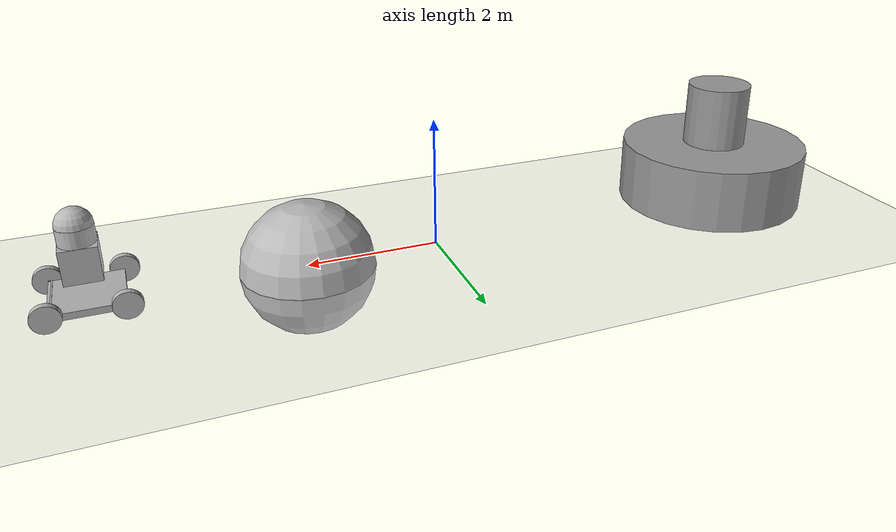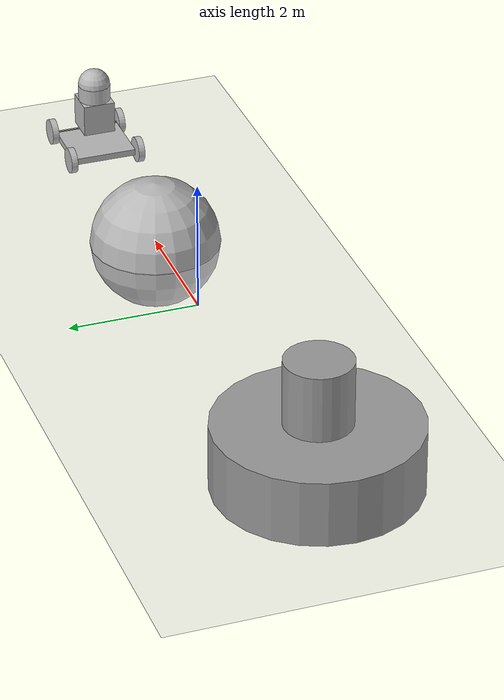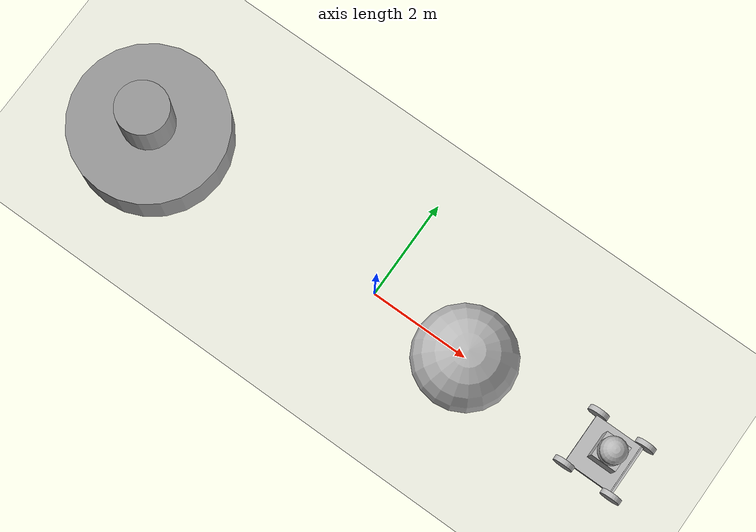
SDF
<sdf version="1.5">
 <world name="default">
  <wind><linear_velocity>0 1 0</linear_velocity></wind>
  <plugin name="wind" filename="libWindPlugin.so">
   <horizontal>
    <magnitude>
     <time_for_rise>10</time_for_rise>
     <sin><amplitude_percent>0.05</amplitude_percent><period>60</period></sin>
     <noise type="gaussian"><mean>0</mean><stddev>0.0002</stddev></noise>
    </magnitude>
    <direction>
     <time_for_rise>30</time_for_rise>
     <sin><amplitude>5</amplitude><period>20</period></sin>
     <noise type="gaussian"><mean>0</mean><stddev>0.03</stddev></noise>
    </direction>
   </horizontal>
   <vertical><noise type="gaussian"><mean>0</mean><stddev>0.03</stddev></noise></vertical>
  </plugin>
  <include><uri>model://ground_plane</uri></include>
  <include><uri>model://sun</uri></include>
  <model name="sphere">
   <pose>2 0 0 0 0 0</pose>
   <link name="body">
    <inertial>
     <inertia><ixx>1</ixx><ixy>0</ixy><ixz>0</ixz><iyy>1</iyy><iyz>0</iyz><izz>1</izz></inertia>
     <mass>1.0</mass>
    </inertial>
    <collision name="geom"><geometry><sphere><radius>1</radius></sphere></geometry></collision>
    <visual name="visual">
     <geometry><sphere><radius>1</radius></sphere></geometry>
     <material><script>Gazebo/WoodPallet</script></material>
    </visual>
   </link>
   <static>true</static>
  </model>
  <model name="camera_model">
   <link name="my_link">
    <inertial>
     <inertia><ixx>1</ixx><ixy>0</ixy><ixz>0</ixz><iyy>1</iyy><iyz>0</iyz><izz>1</izz></inertia>
     <mass>1.0</mass>
    </inertial>
    <collision name="collision"><geometry><box><size>1 1 1</size></box></geometry></collision>
    <sensor name="camera" type="depth">
     <camera>
      <horizontal_fov>1.04719755</horizontal_fov>
      <image><width>640</width><height>480</height></image>
      <clip><near>0.1</near><far>20</far></clip>
     </camera>
     <plugin filename="libDepthCameraPlugin.so" name="depth_camera_plugin"/>
     <always_on>true</always_on>
     <update_rate>10</update_rate>
    </sensor>
   </link>
   <static>true</static>
  </model>
  <model name="camera_model1">
   <pose>0 1 0 0 0 0</pose>
   <link name="my_link1">
    <inertial>
     <inertia><ixx>1</ixx><ixy>0</ixy><ixz>0</ixz><iyy>1</iyy><iyz>0</iyz><izz>1</izz></inertia>
     <mass>1.0</mass>
    </inertial>
    <collision name="collision"><geometry><box><size>1 1 1</size></box></geometry></collision>
    <sensor name="camera" type="wideanglecamera">
     <camera>
      <horizontal_fov>1.047</horizontal_fov>
      <image><width>320</width><height>240</height></image>
      <clip><near>0.1</near><far>100</far></clip>
      <lens>
       <type>gnomonical</type>
       <scale_to_hfov>true</scale_to_hfov>
       <cutoff_angle>1.5707</cutoff_angle>
       <env_texture_size>512</env_texture_size>
      </lens>
     </camera>
     <always_on>1</always_on>
     <update_rate>30</update_rate>
     <visualize>true</visualize>
     <plugin name="lensflare" filename="libLensFlareSensorPlugin.so"/>
    </sensor>
   </link>
   <static>true</static>
  </model>
  <model name="camera_model2">
   <pose>1 0 0 0 0 0</pose>
   <link name="my_link2">
    <inertial>
     <inertia><ixx>1</ixx><ixy>0</ixy><ixz>0</ixz><iyy>1</iyy><iyz>0</iyz><izz>1</izz></inertia>
     <mass>1.0</mass>
    </inertial>
    <collision name="collision"><geometry><box><size>1 1 1</size></box></geometry></collision>
    <sensor name="camera2" type="camera">
     <camera>
      <horizontal_fov>1.04719755</horizontal_fov>
      <image><width>640</width><height>480</height></image>
      <clip><near>0.1</near><far>20</far></clip>
     </camera>
     <plugin filename="libCameraPlugin.so" name="camera_plugin"/>
     <always_on>true</always_on>
     <update_rate>10</update_rate>
    </sensor>
   </link>
   <static>true</static>
  </model>
  <model name="actuator_example">
   <pose>-5 0 0 0 0 0</pose>
   <link name="top">
    <visual name="top_visual">
     <pose>0 0 1.5 0 -0 0</pose>
     <geometry><cylinder><radius>0.5</radius><length>1</length></cylinder></geometry>
     <material>
      <script><uri>file://media/materials/scripts/gazebo.material</uri><name>Gazebo/Grey</name></script>
     </material>
    </visual>
    <collision name="top_collision">
     <geometry><cylinder><radius>0.5</radius><length>1</length></cylinder></geometry>
     <pose>0 0 1.5 0 0 0</pose>
    </collision>
    <inertial>
     <mass>1</mass>
     <inertia><ixx>1</ixx><ixy>0</ixy><ixz>0</ixz><iyy>1</iyy><iyz>0</iyz><izz>1</izz></inertia>
    </inertial>
   </link>
   <link name="base">
    <visual name="base_visual">
     <pose>0 0 0.5 0 0 0</pose>
     <geometry><cylinder><radius>1.5</radius><length>1</length></cylinder></geometry>
     <material>
      <script><uri>file://media/materials/scripts/gazebo.material</uri><name>Gazebo/Grey</name></script>
     </material>
    </visual>
    <collision name="base_collision">
     <geometry><cylinder><radius>1.5</radius><length>1</length></cylinder></geometry>
     <pose>0 0 0.5 0 0 0</pose>
    </collision>
    <inertial>
     <mass>1</mass>
     <inertia><ixx>1</ixx><ixy>0</ixy><ixz>0</ixz><iyy>1</iyy><iyz>0</iyz><izz>1</izz></inertia>
    </inertial>
   </link>
   <joint name="JOINT_0" type="revolute">
    <parent>base</parent>
    <child>top</child>
    <axis>
     <xyz>0 0 1</xyz>
     <use_parent_model_frame>0</use_parent_model_frame>
     <limit><lower>1e-16</lower><upper>1e16</upper></limit>
    </axis>
    <pose>0 0 1 0 -0 0</pose>
   </joint>
   <static>0</static>
   <plugin name="actuator_plugin" filename="libActuatorPlugin.so">
    <actuator>
     <name>actuator_0</name>
     <joint>JOINT_0</joint>
     <index>0</index>
     <type>electric_motor</type>
     <power>20</power>
     <max_velocity>6</max_velocity>
     <max_torque>10.0</max_torque>
    </actuator>
   </plugin>
  </model>
  <model name="test_model">
   <pose>5 0 0.7 0 0 0</pose>
   <link name="link">
    <inertial>
     <inertia><ixx>1</ixx><ixy>0</ixy><ixz>0</ixz><iyy>1</iyy><iyz>0</iyz><izz>1</izz></inertia>
     <mass>1.0</mass>
    </inertial>
    <collision name="collision">
     <pose>0 0 -0.55 0 0 0</pose>
     <geometry><box><size>1 1 0.1</size></box></geometry>
     <surface>
      <friction><ode><mu>1</mu><mu2>1</mu2></ode></friction>
      <contact><ode><max_vel>100</max_vel></ode></contact>
     </surface>
    </collision>
    <visual name="visual">
     <pose>0 0 -0.55 0 0 0</pose>
     <geometry><box><size>1 1 0.1</size></box></geometry>
     <material><script>Gazebo/WoodPallet</script></material>
    </visual>
    <collision name="collision2">
     <geometry><box><size>0.5 0.5 0.5</size></box></geometry>
     <surface>
      <friction><ode><mu>1</mu><mu2>1</mu2></ode></friction>
      <contact><ode><max_vel>100</max_vel></ode></contact>
     </surface>
    </collision>
    <visual name="visual2">
     <geometry><box><size>0.5 0.5 0.5</size></box></geometry>
     <material><script>Gazebo/WoodPallet</script></material>
    </visual>
   </link>
   <link name="bar_1">
    <pose>0.45 0 -0.5 0 0 0</pose>
    <inertial>
     <inertia><ixx>0.001</ixx><ixy>0</ixy><ixz>0</ixz><iyy>0.001</iyy><iyz>0</iyz><izz>0.001</izz></inertia>
     <mass>0.1</mass>
    </inertial>
    <collision name="collision">
     <geometry><box><size>0.02 1.0 0.02</size></box></geometry>
     <surface>
      <friction><ode><mu>1</mu><mu2>1</mu2></ode></friction>
      <contact><ode><max_vel>100</max_vel></ode></contact>
     </surface>
    </collision>
    <visual name="visual">
     <geometry><box><size>0.02 1.0 0.02</size></box></geometry>
     <material><script>Gazebo/WoodPallet</script></material>
    </visual>
   </link>
   <joint name="bar_12_joint" type="revolute">
    <parent>bar_2</parent>
    <child>bar_1</child>
    <pose>0 0.5 0 0 0 0</pose>
    <axis><xyz>0 0 1</xyz><use_parent_model_frame>true</use_parent_model_frame></axis>
   </joint>
   <joint name="bar_13_joint" type="revolute">
    <parent>bar_3</parent>
    <child>bar_1</child>
    <pose>0 -0.5 0 0 0 0</pose>
    <axis><xyz>0 0 1</xyz><use_parent_model_frame>true</use_parent_model_frame></axis>
   </joint>
   <link name="bar_2">
    <pose>0.5 0.5 -0.5 0 0 0</pose>
    <inertial>
     <inertia><ixx>0.001</ixx><ixy>0</ixy><ixz>0</ixz><iyy>0.001</iyy><iyz>0</iyz><izz>0.001</izz></inertia>
     <mass>0.1</mass>
    </inertial>
    <collision name="collision">
     <pose>-0.025 0 0 0 0 0</pose>
     <geometry><box><size>0.05 0.02 0.02</size></box></geometry>
     <surface>
      <friction><ode><mu>1</mu><mu2>1</mu2></ode></friction>
      <contact><ode><max_vel>100</max_vel></ode></contact>
     </surface>
    </collision>
    <visual name="visual">
     <pose>-0.025 0 0 0 0 0</pose>
     <geometry><box><size>0.05 0.02 0.02</size></box></geometry>
     <material><script>Gazebo/WoodPallet</script></material>
    </visual>
   </link>
   <joint name="bar_2_joint" type="revolute">
    <parent>link</parent>
    <child>bar_2</child>
    <axis><xyz>0 0 1</xyz><use_parent_model_frame>true</use_parent_model_frame></axis>
   </joint>
   <link name="bar_3">
    <pose>0.5 -0.5 -0.5 0 0 0</pose>
    <inertial>
     <inertia><ixx>0.001</ixx><ixy>0</ixy><ixz>0</ixz><iyy>0.001</iyy><iyz>0</iyz><izz>0.001</izz></inertia>
     <mass>0.1</mass>
    </inertial>
    <collision name="collision">
     <pose>-0.025 0 0 0 0 0</pose>
     <geometry><box><size>0.05 0.02 0.02</size></box></geometry>
     <surface>
      <friction><ode><mu>1</mu><mu2>1</mu2></ode></friction>
      <contact><ode><max_vel>100</max_vel></ode></contact>
     </surface>
    </collision>
    <visual name="visual">
     <pose>-0.025 0 0 0 0 0</pose>
     <geometry><box><size>0.05 0.02 0.02</size></box></geometry>
     <material><script>Gazebo/WoodPallet</script></material>
    </visual>
   </link>
   <joint name="bar_3_joint" type="revolute">
    <parent>link</parent>
    <child>bar_3</child>
    <axis><xyz>0 0 1</xyz><use_parent_model_frame>true</use_parent_model_frame></axis>
   </joint>
   <link name="wheel_1">
    <pose>0.5 0.55 -0.5 1.57079633 0 0</pose>
    <inertial>
     <inertia><ixx>0.01</ixx><ixy>0</ixy><ixz>0</ixz><iyy>0.01</iyy><iyz>0</iyz><izz>0.01</izz></inertia>
     <mass>1.0</mass>
    </inertial>
    <collision name="collision">
     <geometry><cylinder><radius>0.2</radius><length>0.1</length></cylinder></geometry>
     <surface>
      <friction><ode><fdir1>1 0 0</fdir1><mu>1</mu><mu2>1</mu2></ode></friction>
      <contact><ode><max_vel>100</max_vel></ode></contact>
     </surface>
    </collision>
    <visual name="visual">
     <geometry><cylinder><radius>0.2</radius><length>0.1</length></cylinder></geometry>
     <material><script>Gazebo/WoodPallet</script></material>
    </visual>
   </link>
   <joint name="wheel_1_joint" type="revolute">
    <parent>bar_2</parent>
    <child>wheel_1</child>
    <axis><xyz>0 1 0</xyz><use_parent_model_frame>true</use_parent_model_frame></axis>
   </joint>
   <link name="wheel_2">
    <pose>0.5 -0.55 -0.5 1.57079633 0 0</pose>
    <inertial>
     <inertia><ixx>0.01</ixx><ixy>0</ixy><ixz>0</ixz><iyy>0.01</iyy><iyz>0</iyz><izz>0.01</izz></inertia>
     <mass>1.0</mass>
    </inertial>
    <collision name="collision">
     <geometry><cylinder><radius>0.2</radius><length>0.1</length></cylinder></geometry>
     <surface>
      <friction><ode><fdir1>1 0 0</fdir1><mu>1</mu><mu2>1</mu2></ode></friction>
      <contact><ode><max_vel>100</max_vel></ode></contact>
     </surface>
    </collision>
    <visual name="visual">
     <geometry><cylinder><radius>0.2</radius><length>0.1</length></cylinder></geometry>
     <material><script>Gazebo/WoodPallet</script></material>
    </visual>
   </link>
   <joint name="wheel_2_joint" type="revolute">
    <parent>bar_3</parent>
    <child>wheel_2</child>
    <axis><xyz>0 1 0</xyz><use_parent_model_frame>true</use_parent_model_frame></axis>
   </joint>
   <link name="wheel_3">
    <pose>-0.5 0.55 -0.5 1.57079633 0 0</pose>
    <inertial>
     <inertia><ixx>0.01</ixx><ixy>0</ixy><ixz>0</ixz><iyy>0.01</iyy><iyz>0</iyz><izz>0.01</izz></inertia>
     <mass>1.0</mass>
    </inertial>
    <collision name="collision">
     <geometry><cylinder><radius>0.2</radius><length>0.1</length></cylinder></geometry>
     <surface>
      <friction><ode><fdir1>1 0 0</fdir1><mu>1</mu><mu2>1</mu2></ode></friction>
      <contact><ode><max_vel>100</max_vel></ode></contact>
     </surface>
    </collision>
    <visual name="visual">
     <geometry><cylinder><radius>0.2</radius><length>0.1</length></cylinder></geometry>
     <material><script>Gazebo/WoodPallet</script></material>
    </visual>
   </link>
   <joint name="wheel_3_joint" type="revolute">
    <parent>link</parent>
    <child>wheel_3</child>
    <axis>
     <dynamics><damping>0.0</damping><friction>0.0</friction></dynamics>
     <xyz>0 1 0</xyz>
     <use_parent_model_frame>true</use_parent_model_frame>
    </axis>
   </joint>
   <link name="wheel_4">
    <pose>-0.5 -0.55 -0.5 1.57079633 0 0</pose>
    <inertial>
     <inertia><ixx>0.01</ixx><ixy>0</ixy><ixz>0</ixz><iyy>0.01</iyy><iyz>0</iyz><izz>0.01</izz></inertia>
     <mass>1.0</mass>
    </inertial>
    <collision name="collision">
     <geometry><cylinder><radius>0.2</radius><length>0.1</length></cylinder></geometry>
     <surface>
      <friction><ode><fdir1>1 0 0</fdir1><mu>1</mu><mu2>1</mu2></ode></friction>
      <contact><ode><max_vel>100</max_vel></ode></contact>
     </surface>
    </collision>
    <visual name="visual">
     <geometry><cylinder><radius>0.2</radius><length>0.1</length></cylinder></geometry>
     <material><script>Gazebo/WoodPallet</script></material>
    </visual>
   </link>
   <joint name="wheel_4_joint" type="revolute">
    <parent>link</parent>
    <child>wheel_4</child>
    <axis>
     <dynamics><damping>0.0</damping><friction>0.0</friction></dynamics>
     <xyz>0 1 0</xyz>
     <use_parent_model_frame>true</use_parent_model_frame>
    </axis>
   </joint>
   <link name="sphere_link">
    <pose>0 0 0.5 0 0 0</pose>
    <inertial>
     <inertia><ixx>0.1</ixx><ixy>0</ixy><ixz>0</ixz><iyy>0.1</iyy><iyz>0</iyz><izz>0.1</izz></inertia>
     <mass>10.0</mass>
    </inertial>
    <collision name="collision">
     <geometry><sphere><radius>0.25</radius></sphere></geometry>
     <surface>
      <friction><ode><fdir1>1 0 0</fdir1><mu>1</mu><mu2>1</mu2></ode></friction>
      <contact><ode><max_vel>10</max_vel></ode></contact>
     </surface>
    </collision>
    <visual name="visual">
     <geometry><sphere><radius>0.25</radius></sphere></geometry>
     <material><script>Gazebo/WoodPallet</script></material>
    </visual>
   </link>
   <joint name="joint_sphere" type="revolute">
    <parent>link</parent>
    <child>sphere_link</child>
    <axis><xyz>0 0 1</xyz><use_parent_model_frame>true</use_parent_model_frame></axis>
   </joint>
   <link name="cylinder_link">
    <pose>0 0 0.25 0 0 0</pose>
    <inertial>
     <inertia><ixx>0.1</ixx><ixy>0</ixy><ixz>0</ixz><iyy>0.1</iyy><iyz>0</iyz><izz>0.1</izz></inertia>
     <mass>10.0</mass>
    </inertial>
    <collision name="collision">
     <geometry><cylinder><radius>0.25</radius><length>0.5</length></cylinder></geometry>
     <surface>
      <friction><ode><mu>1</mu><mu2>1</mu2></ode></friction>
      <contact><ode><max_vel>10</max_vel></ode></contact>
     </surface>
    </collision>
    <visual name="visual">
     <geometry><cylinder><radius>0.25</radius><length>0.5</length></cylinder></geometry>
     <material><script>Gazebo/WoodPallet</script></material>
    </visual>
   </link>
   <joint name="joint_cylinder" type="revolute">
    <parent>sphere_link</parent>
    <child>cylinder_link</child>
    <axis><xyz>0 0 1</xyz><use_parent_model_frame>true</use_parent_model_frame></axis>
   </joint>
   <plugin name="cart_test_plugin" filename="libCartDemoPlugin.so">
    <steer>bar_2_joint</steer>
    <steer_pid>10 0.1 0.5</steer_pid>
    <steer_ilim>-10 10</steer_ilim>
    <steer_pos>0.0</steer_pos>
    <steer_vel>0</steer_vel>
    <steer_eff>100.0</steer_eff>
    <right>wheel_3_joint</right>
    <right_pid>0.1 0.0 0.001</right_pid>
    <right_ilim>-.1 .1</right_ilim>
    <right_pos>0</right_pos>
    <right_vel>0</right_vel>
    <right_eff>0.1</right_eff>
    <left>wheel_4_joint</left>
    <left_pid>0.1 0.0 0.001</left_pid>
    <left_ilim>-.1 .1</left_ilim>
    <left_pos>0</left_pos>
    <left_vel>0</left_vel>
    <left_eff>0.1</left_eff>
   </plugin>
  </model>
 </world>
</sdf>
